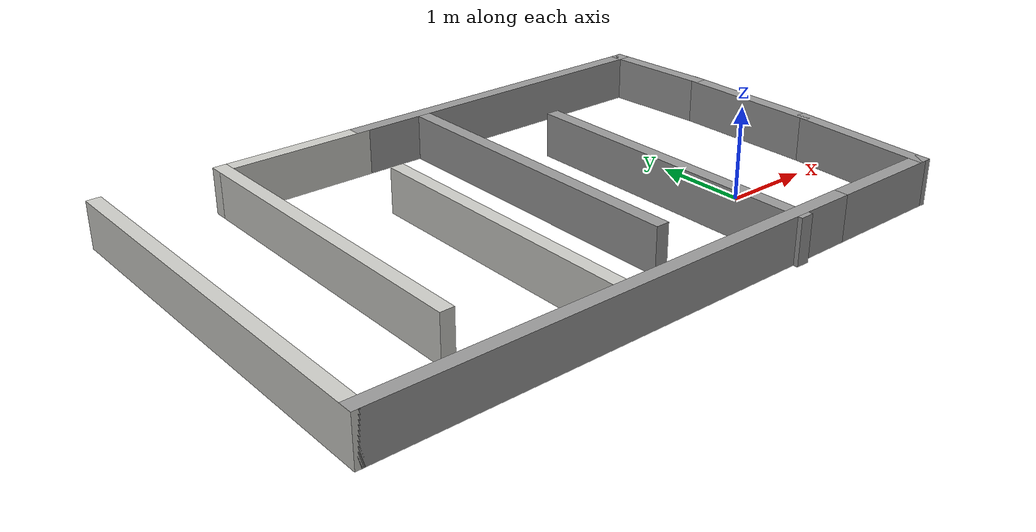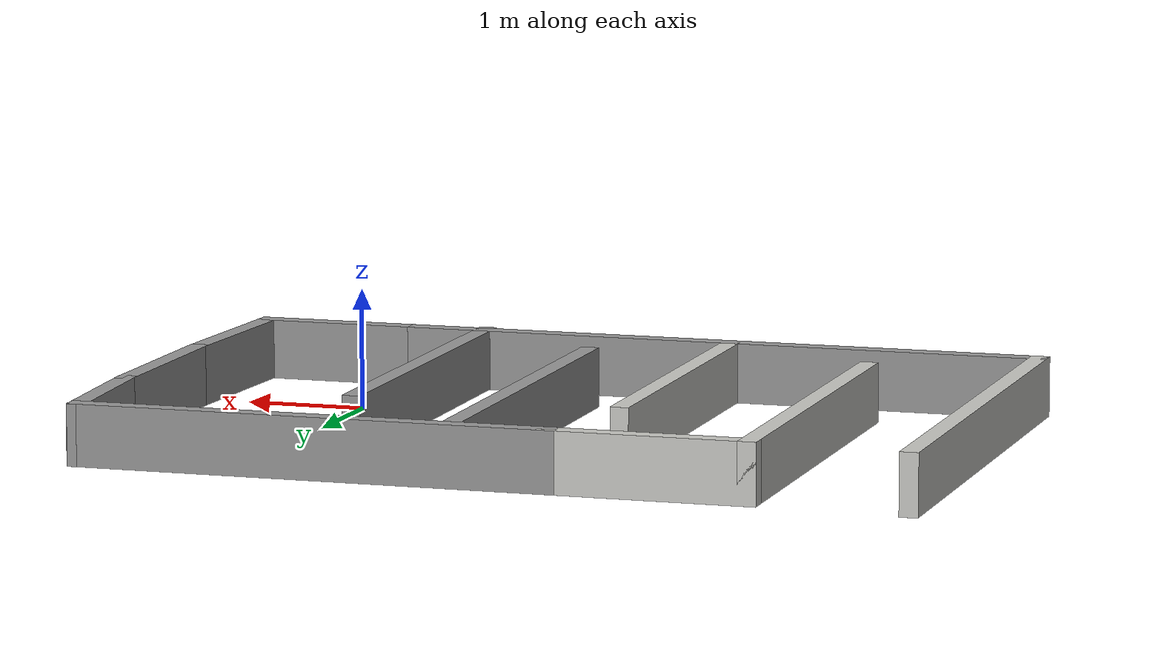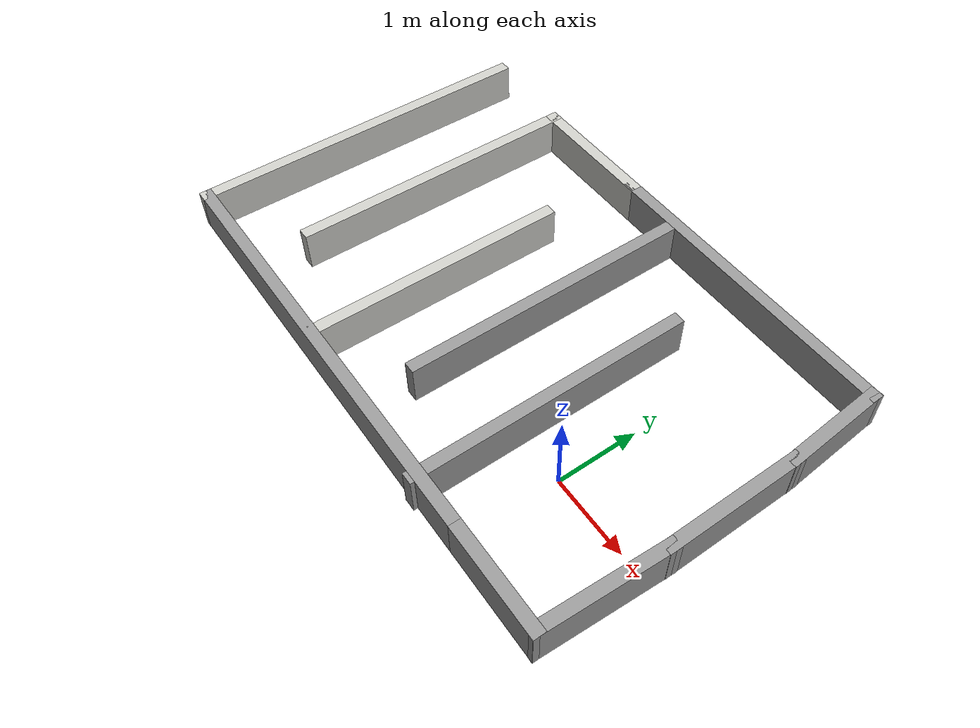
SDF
<?xml version='1.0'?>
<sdf version='1.7'>
  <model name='turtlebot_labirent'>
    <pose>-2.03208 0.8985 0 0 -0 0</pose>
    <link name='Wall_16'>
      <collision name='Wall_16_Collision'>
        <geometry>
          <box>
            <size>1.5 0.15 0.5</size>
          </box>
        </geometry>
        <pose>0 0 0.25 0 -0 0</pose>
      </collision>
      <visual name='Wall_16_Visual'>
        <pose>0 0 0.25 0 -0 0</pose>
        <geometry>
          <box>
            <size>1.5 0.15 0.5</size>
          </box>
        </geometry>
        <material>
          <script>
            <uri>file://media/materials/scripts/gazebo.material</uri>
            <name>Gazebo/Grey</name>
          </script>
          <ambient>1 1 1 1</ambient>
        </material>
        <meta>
          <layer>0</layer>
        </meta>
      </visual>
      <pose>2.64308 -2.1505 0 0 -0 0</pose>
    </link>
    <link name='Wall_17'>
      <collision name='Wall_17_Collision'>
        <geometry>
          <box>
            <size>1.65159 0.15 0.5</size>
          </box>
        </geometry>
        <pose>0 0 0.25 0 -0 0</pose>
      </collision>
      <visual name='Wall_17_Visual'>
        <pose>0 0 0.25 0 -0 0</pose>
        <geometry>
          <box>
            <size>1.65159 0.15 0.5</size>
          </box>
        </geometry>
        <material>
          <script>
            <uri>file://media/materials/scripts/gazebo.material</uri>
            <name>Gazebo/Grey</name>
          </script>
          <ambient>1 1 1 1</ambient>
        </material>
        <meta>
          <layer>0</layer>
        </meta>
      </visual>
      <pose>3.35808 -1.4005 0 0 -0 1.51751</pose>
    </link>
    <link name='Wall_20'>
      <collision name='Wall_20_Collision'>
        <geometry>
          <box>
            <size>1.75 0.15 0.5</size>
          </box>
        </geometry>
        <pose>0 0 0.25 0 -0 0</pose>
      </collision>
      <visual name='Wall_20_Visual'>
        <pose>0 0 0.25 0 -0 0</pose>
        <geometry>
          <box>
            <size>1.75 0.15 0.5</size>
          </box>
        </geometry>
        <material>
          <script>
            <uri>file://media/materials/scripts/gazebo.material</uri>
            <name>Gazebo/Grey</name>
          </script>
          <ambient>1 1 1 1</ambient>
        </material>
        <meta>
          <layer>0</layer>
        </meta>
      </visual>
      <pose>3.39808 0.1495 0 0 -0 1.5708</pose>
    </link>
    <link name='Wall_21'>
      <collision name='Wall_21_Collision'>
        <geometry>
          <box>
            <size>1.35326 0.15 0.5</size>
          </box>
        </geometry>
        <pose>0 0 0.25 0 -0 0</pose>
      </collision>
      <visual name='Wall_21_Visual'>
        <pose>0 0 0.25 0 -0 0</pose>
        <geometry>
          <box>
            <size>1.35326 0.15 0.5</size>
          </box>
        </geometry>
        <material>
          <script>
            <uri>file://media/materials/scripts/gazebo.material</uri>
            <name>Gazebo/Grey</name>
          </script>
          <ambient>1 1 1 1</ambient>
        </material>
        <meta>
          <layer>0</layer>
        </meta>
      </visual>
      <pose>3.35808 1.5495 0 0 -0 1.63736</pose>
    </link>
    <link name='Wall_22'>
      <collision name='Wall_22_Collision'>
        <geometry>
          <box>
            <size>4 0.15 0.5</size>
          </box>
        </geometry>
        <pose>0 0 0.25 0 -0 0</pose>
      </collision>
      <visual name='Wall_22_Visual'>
        <pose>0 0 0.25 0 -0 0</pose>
        <geometry>
          <box>
            <size>4 0.15 0.5</size>
          </box>
        </geometry>
        <material>
          <script>
            <uri>file://media/materials/scripts/gazebo.material</uri>
            <name>Gazebo/Grey</name>
          </script>
          <ambient>1 1 1 1</ambient>
        </material>
        <meta>
          <layer>0</layer>
        </meta>
      </visual>
      <pose>1.39308 2.1495 0 0 -0 3.14159</pose>
    </link>
    <link name='Wall_24'>
      <collision name='Wall_24_Collision'>
        <geometry>
          <box>
            <size>1.75 0.15 0.5</size>
          </box>
        </geometry>
        <pose>0 0 0.25 0 -0 0</pose>
      </collision>
      <visual name='Wall_24_Visual'>
        <pose>0 0 0.25 0 -0 0</pose>
        <geometry>
          <box>
            <size>1.75 0.15 0.5</size>
          </box>
        </geometry>
        <material>
          <script>
            <uri>file://media/materials/scripts/gazebo.material</uri>
            <name>Gazebo/CeilingTiled</name>
          </script>
          <ambient>1 1 1 1</ambient>
        </material>
        <meta>
          <layer>0</layer>
        </meta>
      </visual>
      <pose>-1.33192 2.1495 0 0 -0 3.14159</pose>
    </link>
    <link name='Wall_28'>
      <collision name='Wall_28_Collision'>
        <geometry>
          <box>
            <size>5.52054 0.15 0.5</size>
          </box>
        </geometry>
        <pose>0 0 0.25 0 -0 0</pose>
      </collision>
      <visual name='Wall_28_Visual'>
        <pose>0 0 0.25 0 -0 0</pose>
        <geometry>
          <box>
            <size>5.52054 0.15 0.5</size>
          </box>
        </geometry>
        <material>
          <script>
            <uri>file://media/materials/scripts/gazebo.material</uri>
            <name>Gazebo/Grey</name>
          </script>
          <ambient>1 1 1 1</ambient>
        </material>
        <meta>
          <layer>0</layer>
        </meta>
      </visual>
      <pose>-0.717421 -2.1505 0 0 -0 0</pose>
    </link>
    <link name='Wall_33'>
      <collision name='Wall_33_Collision'>
        <geometry>
          <box>
            <size>3.5 0.15 0.5</size>
          </box>
        </geometry>
        <pose>0 0 0.25 0 -0 0</pose>
      </collision>
      <visual name='Wall_33_Visual'>
        <pose>0 0 0.25 0 -0 0</pose>
        <geometry>
          <box>
            <size>3.5 0.15 0.5</size>
          </box>
        </geometry>
        <material>
          <script>
            <uri>file://media/materials/scripts/gazebo.material</uri>
            <name>Gazebo/Grey</name>
          </script>
          <ambient>1 1 1 1</ambient>
        </material>
        <meta>
          <layer>0</layer>
        </meta>
      </visual>
      <pose>1.38508 -0.5245 0 0 -0 1.5708</pose>
    </link>
    <link name='Wall_36'>
      <collision name='Wall_36_Collision'>
        <geometry>
          <box>
            <size>3.75 0.15 0.5</size>
          </box>
        </geometry>
        <pose>0 0 0.25 0 -0 0</pose>
      </collision>
      <visual name='Wall_36_Visual'>
        <pose>0 0 0.25 0 -0 0</pose>
        <geometry>
          <box>
            <size>3.75 0.15 0.5</size>
          </box>
        </geometry>
        <material>
          <script>
            <uri>file://media/materials/scripts/gazebo.material</uri>
            <name>Gazebo/Grey</name>
          </script>
          <ambient>1 1 1 1</ambient>
        </material>
        <meta>
          <layer>0</layer>
        </meta>
      </visual>
      <pose>0.259079 0.3255 0 0 -0 -1.5708</pose>
    </link>
    <link name='Wall_38'>
      <collision name='Wall_38_Collision'>
        <geometry>
          <box>
            <size>3.25 0.15 0.5</size>
          </box>
        </geometry>
        <pose>0 0 0.25 0 -0 0</pose>
      </collision>
      <visual name='Wall_38_Visual'>
        <pose>0 0 0.25 0 -0 0</pose>
        <geometry>
          <box>
            <size>3.25 0.15 0.5</size>
          </box>
        </geometry>
        <material>
          <script>
            <uri>file://media/materials/scripts/gazebo.material</uri>
            <name>Gazebo/CeilingTiled</name>
          </script>
          <ambient>1 1 1 1</ambient>
        </material>
        <meta>
          <layer>0</layer>
        </meta>
      </visual>
      <pose>-0.786921 -0.5285 0 0 -0 1.5708</pose>
    </link>
    <link name='Wall_40'>
      <collision name='Wall_40_Collision'>
        <geometry>
          <box>
            <size>3.75 0.15 0.5</size>
          </box>
        </geometry>
        <pose>0 0 0.25 0 -0 0</pose>
      </collision>
      <visual name='Wall_40_Visual'>
        <pose>0 0 0.25 0 -0 0</pose>
        <geometry>
          <box>
            <size>3.75 0.15 0.5</size>
          </box>
        </geometry>
        <material>
          <script>
            <uri>file://media/materials/scripts/gazebo.material</uri>
            <name>Gazebo/CeilingTiled</name>
          </script>
          <ambient>1 1 1 1</ambient>
        </material>
        <meta>
          <layer>0</layer>
        </meta>
      </visual>
      <pose>-2.13192 0.3495 0 0 -0 -1.5708</pose>
    </link>
    <link name='Wall_43'>
      <collision name='Wall_43_Collision'>
        <geometry>
          <box>
            <size>4.5 0.15 0.5</size>
          </box>
        </geometry>
        <pose>0 0 0.25 0 -0 0</pose>
      </collision>
      <visual name='Wall_43_Visual'>
        <pose>0 0 0.25 0 -0 0</pose>
        <geometry>
          <box>
            <size>4.5 0.15 0.5</size>
          </box>
        </geometry>
        <material>
          <script>
            <uri>file://media/materials/scripts/gazebo.material</uri>
            <name>Gazebo/CeilingTiled</name>
          </script>
          <ambient>1 1 1 1</ambient>
        </material>
        <meta>
          <layer>0</layer>
        </meta>
      </visual>
      <pose>-3.40292 0.0245 0 0 -0 1.5708</pose>
    </link>
    <static>1</static>
  </model>
</sdf>
